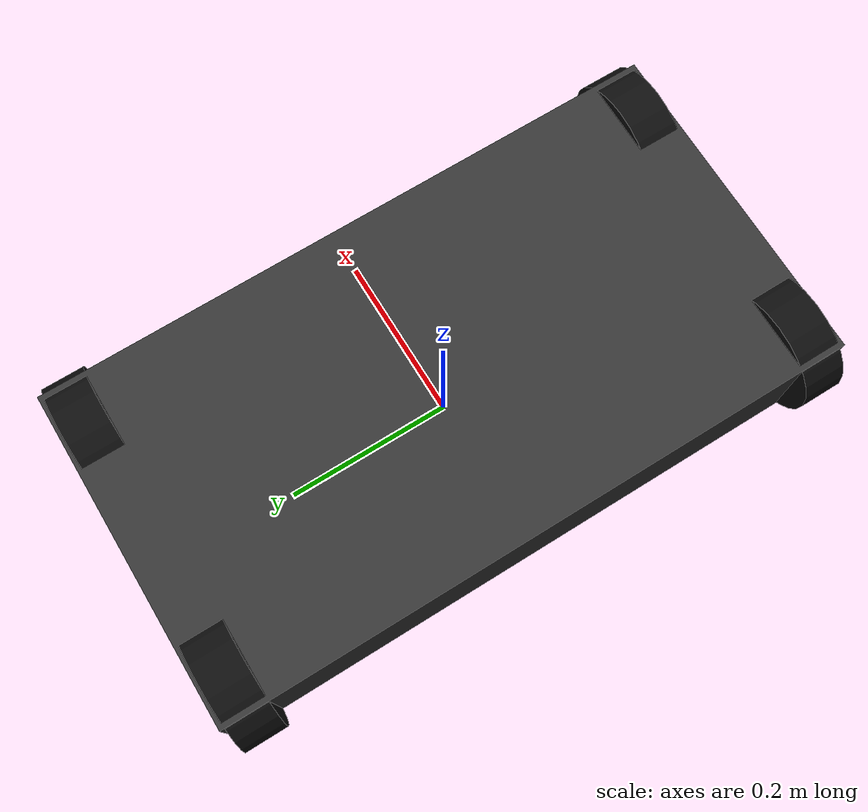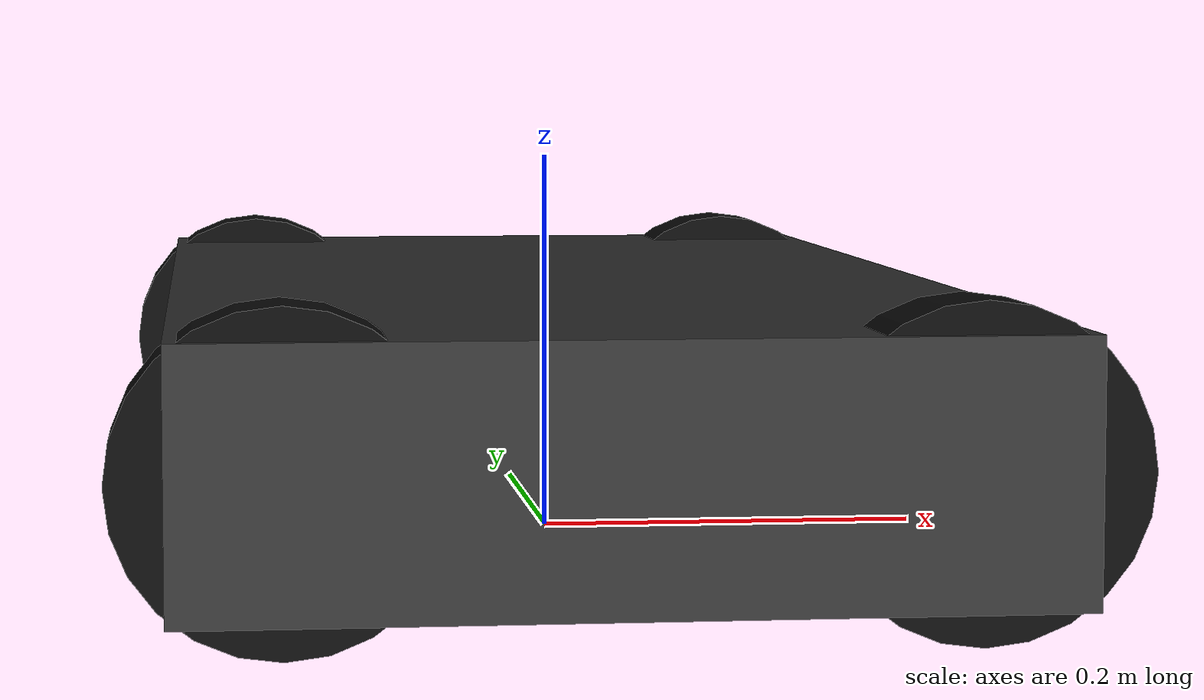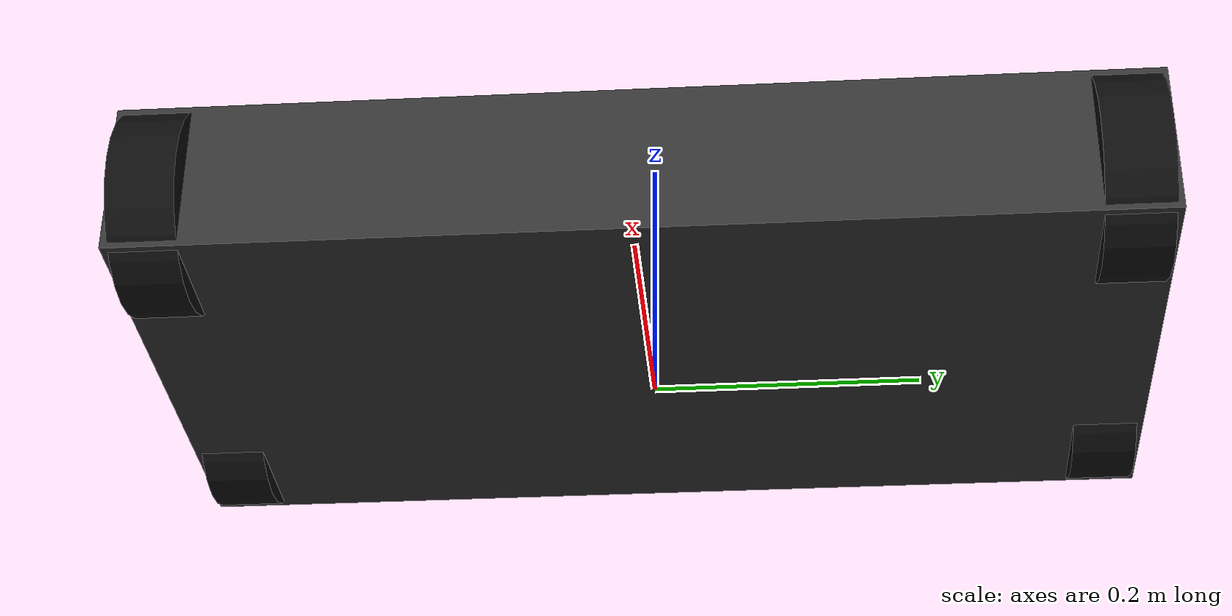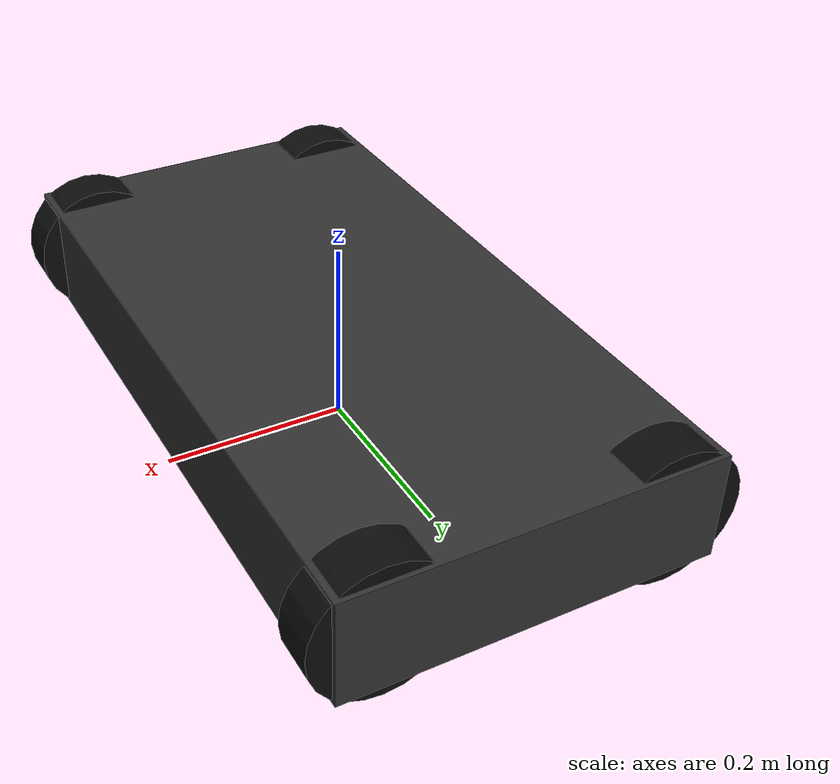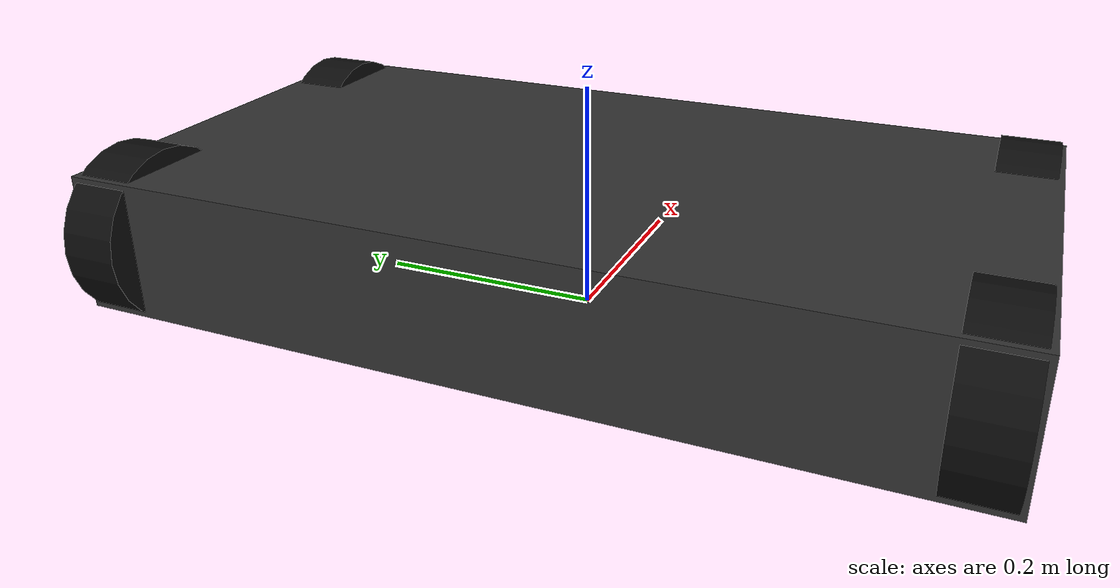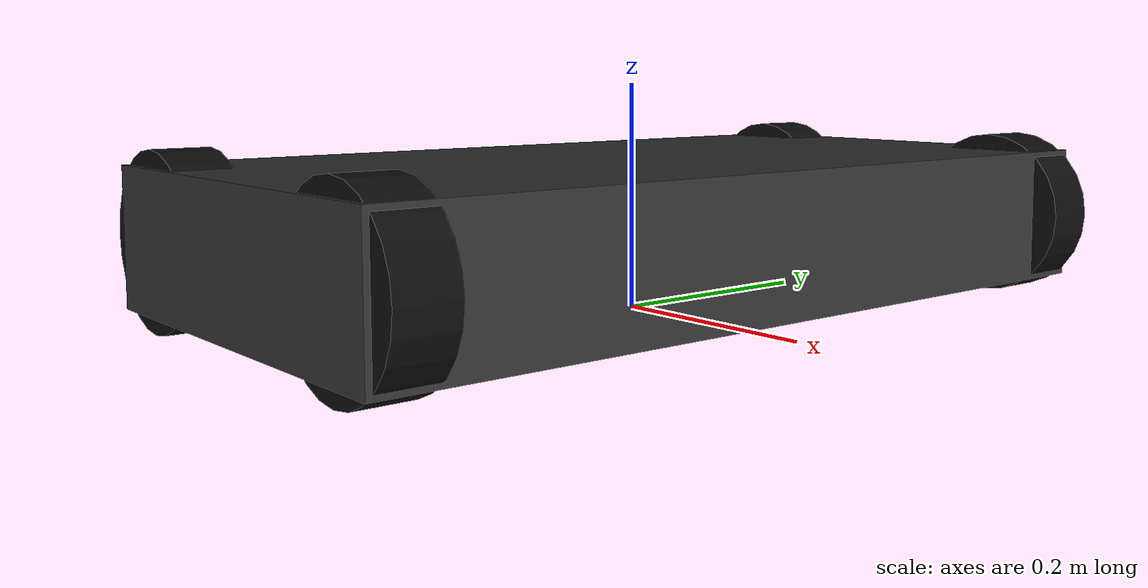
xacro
<?xml version="1.0"?>
<robot name="interpack_robot" xmlns:xacro="http://www.ros.org/wiki/xacro">

  <!-- use_sim=true  → Gazebo (digital twin on workstation)  -->
  <!-- use_sim=false → SerialHardwareInterface (real robot on Pi) -->
  <xacro:arg name="use_sim"     default="true"/>
  <xacro:arg name="serial_port" default="/dev/ttyACM0"/>

  <!-- ========== PARAMETER ========== -->
  <xacro:property name="wheel_radius"     value="0.075"/>  <!-- 15cm Durchmesser -->
  <xacro:property name="wheel_width"      value="0.05"/>
  <xacro:property name="wheel_sep_lat"    value="0.70"/>   <!-- Spurweite links-rechts -->
  <xacro:property name="wheel_sep_lon"    value="0.30"/>   <!-- Radstand vorne-hinten -->
  <xacro:property name="chassis_length"   value="0.40"/>
  <xacro:property name="chassis_width"    value="0.76"/>
  <xacro:property name="chassis_height"   value="0.12"/>
  <xacro:property name="chassis_mass"     value="8.0"/>
  <xacro:property name="wheel_mass"       value="0.5"/>

  <!-- Farben -->
  <material name="dark_grey">
    <color rgba="0.2 0.2 0.2 1.0"/>
  </material>
  <material name="orange">
    <color rgba="0.9 0.4 0.1 1.0"/>
  </material>
  <material name="black">
    <color rgba="0.05 0.05 0.05 1.0"/>
  </material>

  <!-- ========== MAKROS ========== -->
  <xacro:macro name="wheel" params="name x_pos y_pos">
    <link name="${name}_wheel_link">
      <visual>
        <origin xyz="0 0 0" rpy="${pi/2} 0 0"/>
        <geometry>
          <cylinder radius="${wheel_radius}" length="${wheel_width}"/>
        </geometry>
        <material name="black"/>
      </visual>
      <collision>
        <origin xyz="0 0 0" rpy="${pi/2} 0 0"/>
        <geometry>
          <cylinder radius="${wheel_radius}" length="${wheel_width}"/>
        </geometry>
      </collision>
      <inertial>
        <mass value="${wheel_mass}"/>
        <inertia
          ixx="${wheel_mass*(3*wheel_radius*wheel_radius + wheel_width*wheel_width)/12}"
          ixy="0" ixz="0"
          iyy="${wheel_mass*(3*wheel_radius*wheel_radius + wheel_width*wheel_width)/12}"
          iyz="0"
          izz="${wheel_mass*wheel_radius*wheel_radius/2}"/>
      </inertial>
    </link>

    <joint name="${name}_wheel_joint" type="continuous">
      <parent link="base_link"/>
      <child  link="${name}_wheel_link"/>
      <origin xyz="${x_pos} ${y_pos} 0" rpy="0 0 0"/>
      <axis xyz="0 1 0"/>
      <dynamics damping="0.1" friction="0.5"/>
    </joint>
  </xacro:macro>

  <!-- ========== LINKS ========== -->

  <!-- Virtueller Bodenkontaktpunkt -->
  <link name="base_footprint"/>

  <joint name="base_footprint_joint" type="fixed">
    <parent link="base_footprint"/>
    <child  link="base_link"/>
    <origin xyz="0 0 ${wheel_radius}" rpy="0 0 0"/>
  </joint>

  <!-- Chassis -->
  <link name="base_link">
    <visual>
      <origin xyz="0 0 0" rpy="0 0 0"/>
      <geometry>
        <box size="${chassis_length} ${chassis_width} ${chassis_height}"/>
      </geometry>
      <material name="dark_grey"/>
    </visual>
    <collision>
      <origin xyz="0 0 0" rpy="0 0 0"/>
      <geometry>
        <box size="${chassis_length} ${chassis_width} ${chassis_height}"/>
      </geometry>
    </collision>
    <inertial>
      <mass value="${chassis_mass}"/>
      <inertia
        ixx="${chassis_mass*(chassis_width*chassis_width + chassis_height*chassis_height)/12}"
        ixy="0" ixz="0"
        iyy="${chassis_mass*(chassis_length*chassis_length + chassis_height*chassis_height)/12}"
        iyz="0"
        izz="${chassis_mass*(chassis_length*chassis_length + chassis_width*chassis_width)/12}"/>
    </inertial>
  </link>

  <!-- 4 Räder -->
  <xacro:wheel name="front_left"  x_pos=" ${wheel_sep_lon/2}" y_pos=" ${wheel_sep_lat/2}"/>
  <xacro:wheel name="front_right" x_pos=" ${wheel_sep_lon/2}" y_pos="-${wheel_sep_lat/2}"/>
  <xacro:wheel name="rear_left"   x_pos="-${wheel_sep_lon/2}" y_pos=" ${wheel_sep_lat/2}"/>
  <xacro:wheel name="rear_right"  x_pos="-${wheel_sep_lon/2}" y_pos="-${wheel_sep_lat/2}"/>

  <!-- ========== ROS2_CONTROL ========== -->
  <ros2_control name="interpack_control" type="system">

    <hardware>
      <xacro:if value="$(arg use_sim)">
        <plugin>gz_ros2_control/GazeboSimSystem</plugin>
      </xacro:if>
      <xacro:unless value="$(arg use_sim)">
        <plugin>robot_hardware/SerialHardwareInterface</plugin>
        <param name="serial_port">$(arg serial_port)</param>
        <param name="baud_rate">115200</param>
        <param name="max_wheel_angular_vel">13.3</param>
      </xacro:unless>
    </hardware>

    <joint name="front_left_wheel_joint">
      <command_interface name="velocity"/>
      <state_interface name="velocity"/>
      <state_interface name="position"/>
    </joint>
    <joint name="front_right_wheel_joint">
      <command_interface name="velocity"/>
      <state_interface name="velocity"/>
      <state_interface name="position"/>
    </joint>
    <joint name="rear_left_wheel_joint">
      <command_interface name="velocity"/>
      <state_interface name="velocity"/>
      <state_interface name="position"/>
    </joint>
    <joint name="rear_right_wheel_joint">
      <command_interface name="velocity"/>
      <state_interface name="velocity"/>
      <state_interface name="position"/>
    </joint>

  </ros2_control>

  <!-- Gazebo plugin — only active when use_sim=true -->
  <xacro:if value="$(arg use_sim)">
    <gazebo>
      <plugin filename="gz_ros2_control-system"
              name="gz_ros2_control::GazeboSimROS2ControlPlugin">
        <parameters>$(find robot_bringup)/config/ros2_controllers.yaml</parameters>
        <ros>
          <remapping>/diff_drive_controller/cmd_vel:=/cmd_vel</remapping>
          <remapping>/diff_drive_controller/odom:=/odom</remapping>
        </ros>
      </plugin>
    </gazebo>
  </xacro:if>

</robot>
